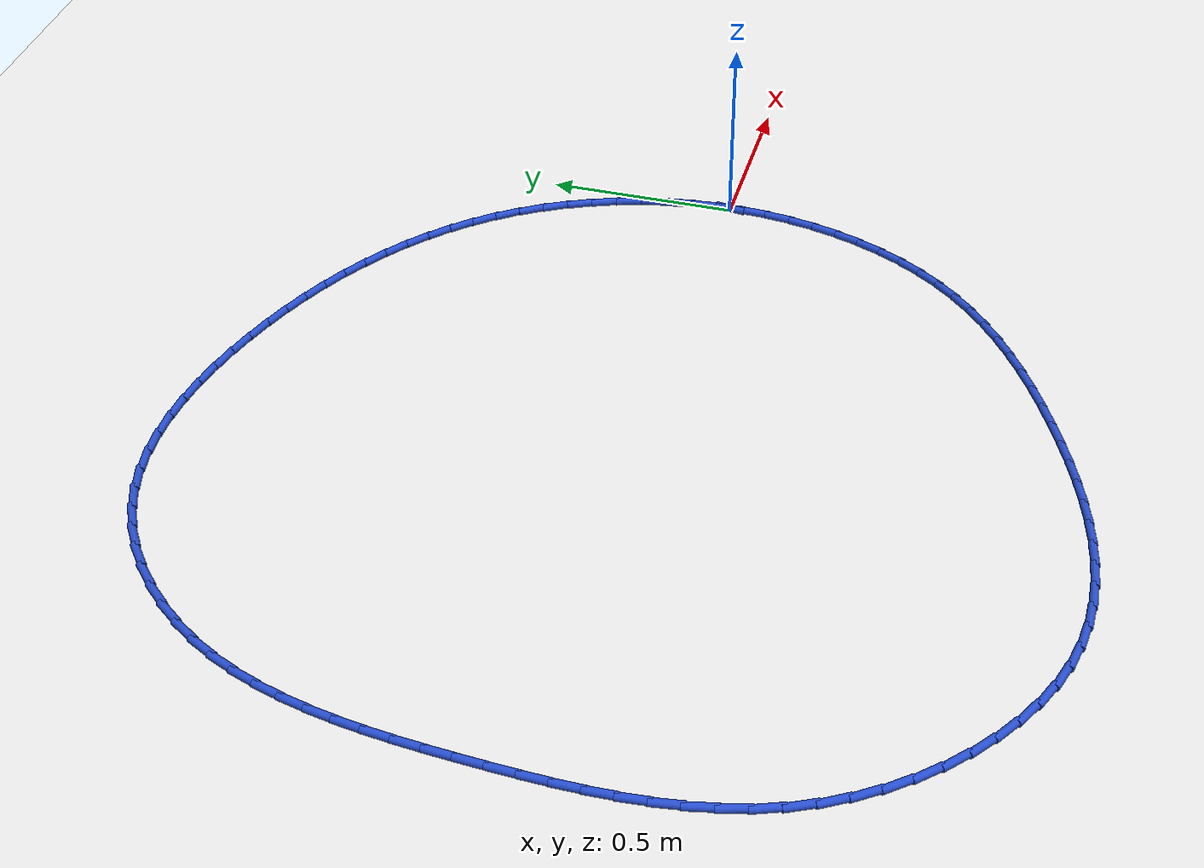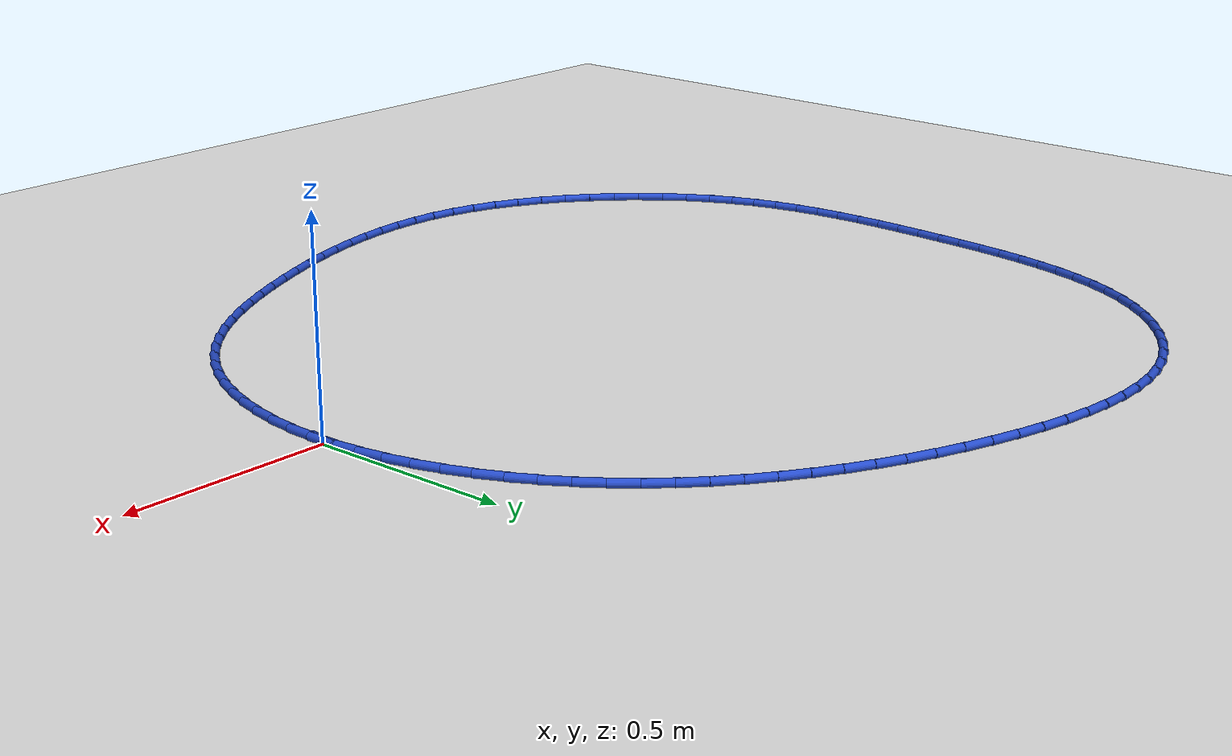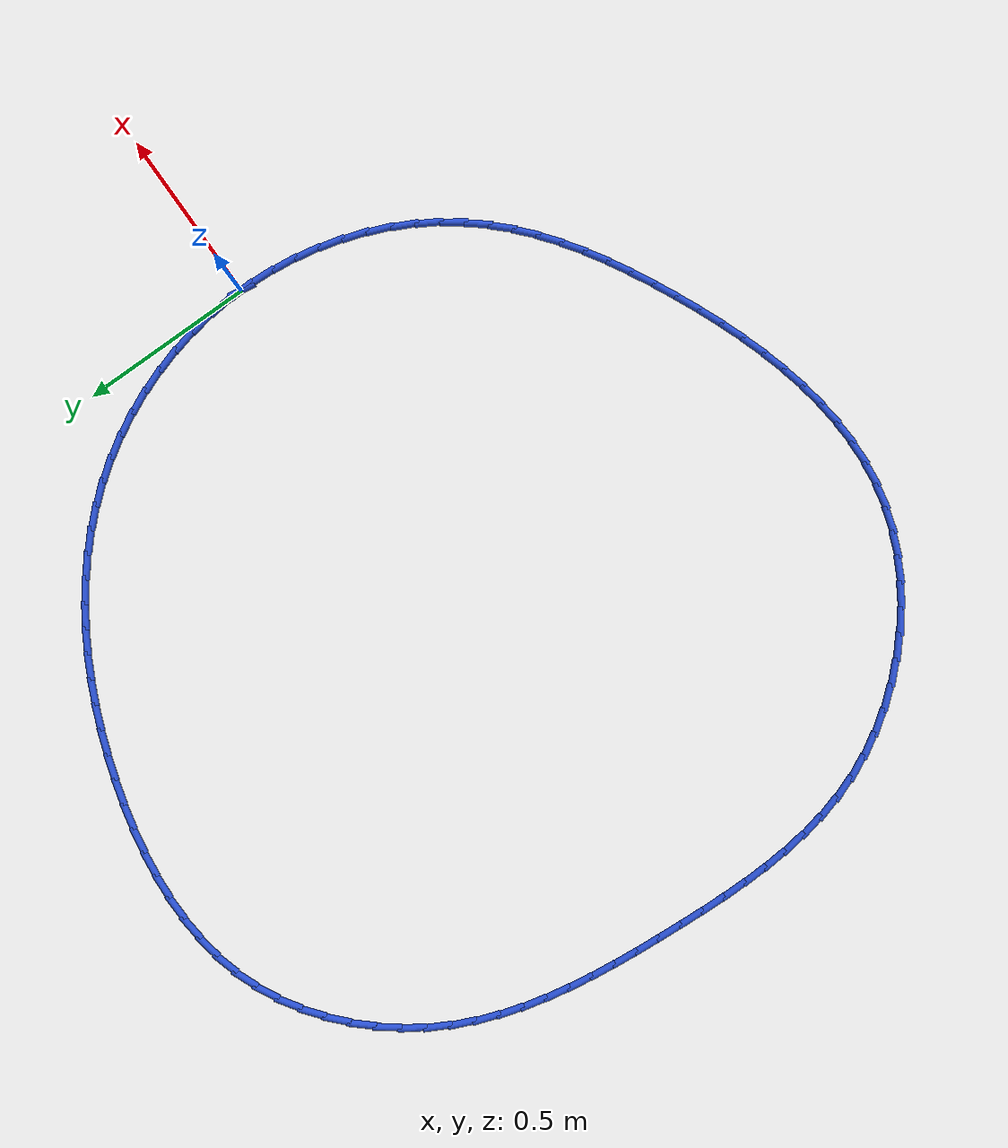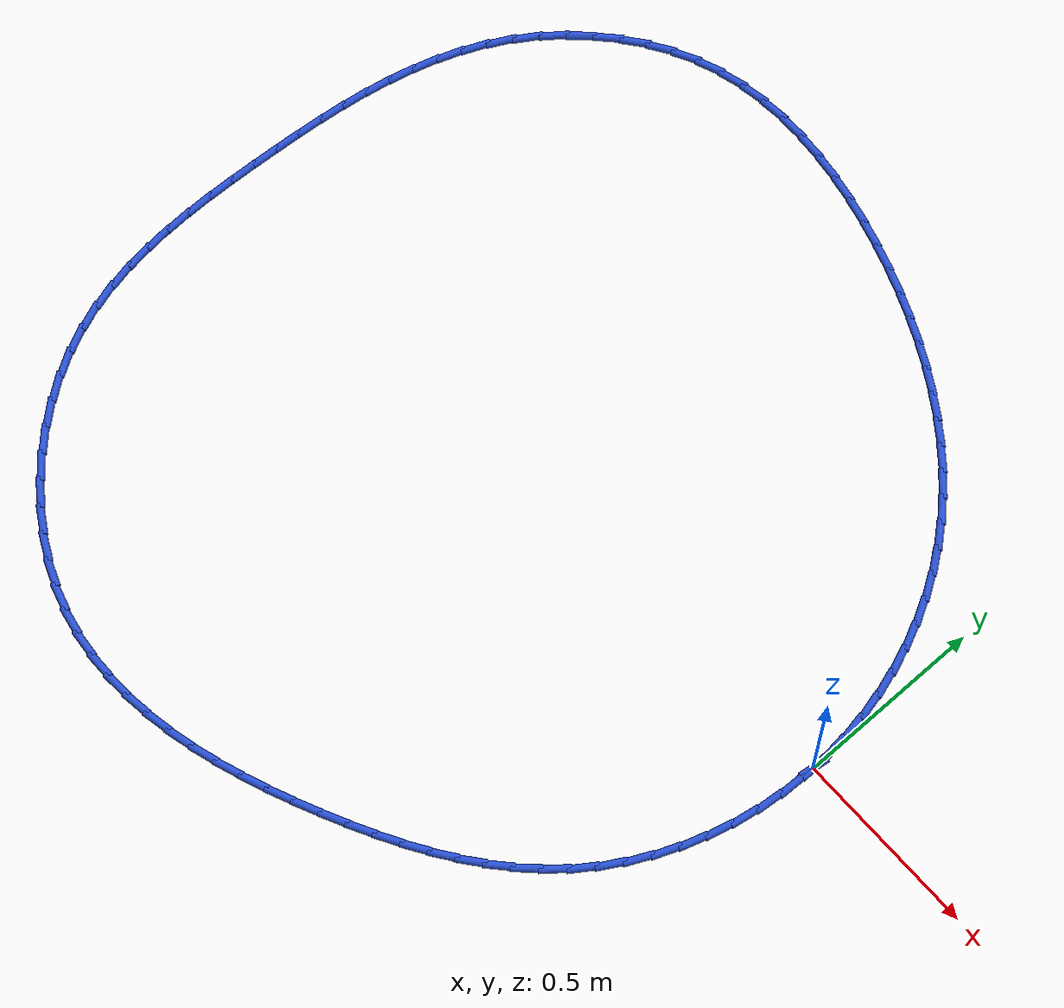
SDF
<sdf version="1.6">
 <world name="default">
  <light name="sun" type="directional">
   <pose>0 0 10 0 -0 0</pose>
   <diffuse>0.8 0.8 0.8 1</diffuse>
   <specular>0.2 0.2 0.2 1</specular>
   <attenuation>
    <range>1000</range>
    <constant>0.9</constant>
    <linear>0.01</linear>
    <quadratic>0.001</quadratic>
   </attenuation>
   <direction>-0.5 0.1 -0.9</direction>
  </light>
  <model name="ground_plane">
   <static>1</static>
   <link name="link">
    <collision name="collision">
     <geometry><plane><normal>0 0 1</normal><size>100 100</size></plane></geometry>
     <surface><friction><ode><mu>100</mu><mu2>50</mu2></ode></friction></surface>
    </collision>
    <visual name="visual">
     <cast_shadows>0</cast_shadows>
     <geometry><plane><normal>0 0 1</normal><size>100 100</size></plane></geometry>
     <material>
      <script><uri>file://media/materials/scripts/gazebo.material</uri><name>Gazebo/WhiteGlow</name></script>
     </material>
    </visual>
   </link>
  </model>
  <gravity>0 0 -9.8</gravity>
  <magnetic_field>6e-06 2.3e-05 -4.2e-05</magnetic_field>
  <atmosphere type="adiabatic"/>
  <physics name="default_physics" default="0" type="ode">
   <max_step_size>0.001</max_step_size>
   <real_time_factor>1</real_time_factor>
   <real_time_update_rate>1000</real_time_update_rate>
  </physics>
  <scene><ambient>0.4 0.4 0.4 1</ambient><background>0.7 0.7 0.7 1</background><shadows>1</shadows></scene>
  <spherical_coordinates>
   <surface_model>EARTH_WGS84</surface_model>
   <latitude_deg>0</latitude_deg>
   <longitude_deg>0</longitude_deg>
   <elevation>0</elevation>
   <heading_deg>0</heading_deg>
  </spherical_coordinates>
  <model name="line">
   <link name="link_0">
    <pose>-1.0408340855860843e-17 2.3592239273284576e-16 0.01 0 1.57 -1.5307040209696998</pose>
    <collision name="collision">
     <geometry><cylinder><radius>0.01</radius><length>0.08</length></cylinder></geometry>
    </collision>
    <visual name="visual">
     <material>
      <script><name>Gazebo/Blue</name><uri>file://media/materials/scripts/gazebo.material</uri></script>
     </material>
     <geometry><cylinder><radius>0.01</radius><length>0.08</length></cylinder></geometry>
    </visual>
   </link>
   <link name="link_1">
    <pose>-0.0027819456140379547 0.06935133405527887 0.01 0 1.57 -1.4609649123528083</pose>
    <collision name="collision">
     <geometry><cylinder><radius>0.01</radius><length>0.08</length></cylinder></geometry>
    </collision>
    <visual name="visual">
     <material>
      <script><name>Gazebo/Blue</name><uri>file://media/materials/scripts/gazebo.material</uri></script>
     </material>
     <geometry><cylinder><radius>0.01</radius><length>0.08</length></cylinder></geometry>
    </visual>
   </link>
   <link name="link_2">
    <pose>-0.010374489710949609 0.13820221873579955 0.01 0 1.57 -1.3925970496812146</pose>
    <collision name="collision">
     <geometry><cylinder><radius>0.01</radius><length>0.08</length></cylinder></geometry>
    </collision>
    <visual name="visual">
     <material>
      <script><name>Gazebo/Blue</name><uri>file://media/materials/scripts/gazebo.material</uri></script>
     </material>
     <geometry><cylinder><radius>0.01</radius><length>0.08</length></cylinder></geometry>
    </visual>
   </link>
   <link name="link_3">
    <pose>-0.02263015509328125 0.2062477460207827 0.01 0 1.57 -1.3252905301535358</pose>
    <collision name="collision">
     <geometry><cylinder><radius>0.01</radius><length>0.08</length></cylinder></geometry>
    </collision>
    <visual name="visual">
     <material>
      <script><name>Gazebo/Blue</name><uri>file://media/materials/scripts/gazebo.material</uri></script>
     </material>
     <geometry><cylinder><radius>0.01</radius><length>0.08</length></cylinder></geometry>
    </visual>
   </link>
   <link name="link_4">
    <pose>-0.03940146456357918 0.273183007889449 0.01 0 1.57 -1.2586994083939762</pose>
    <collision name="collision">
     <geometry><cylinder><radius>0.01</radius><length>0.08</length></cylinder></geometry>
    </collision>
    <visual name="visual">
     <material>
      <script><name>Gazebo/Blue</name><uri>file://media/materials/scripts/gazebo.material</uri></script>
     </material>
     <geometry><cylinder><radius>0.01</radius><length>0.08</length></cylinder></geometry>
    </visual>
   </link>
   <link name="link_5">
    <pose>-0.06054094092438968 0.33870309632101914 0.01 0 1.57 -1.192451535856054</pose>
    <collision name="collision">
     <geometry><cylinder><radius>0.01</radius><length>0.08</length></cylinder></geometry>
    </collision>
    <visual name="visual">
     <material>
      <script><name>Gazebo/Blue</name><uri>file://media/materials/scripts/gazebo.material</uri></script>
     </material>
     <geometry><cylinder><radius>0.01</radius><length>0.08</length></cylinder></geometry>
    </visual>
   </link>
   <link name="link_6">
    <pose>-0.08590110697825899 0.40250310329471356 0.01 0 1.57 -1.126156726993267</pose>
    <collision name="collision">
     <geometry><cylinder><radius>0.01</radius><length>0.08</length></cylinder></geometry>
    </collision>
    <visual name="visual">
     <material>
      <script><name>Gazebo/Blue</name><uri>file://media/materials/scripts/gazebo.material</uri></script>
     </material>
     <geometry><cylinder><radius>0.01</radius><length>0.08</length></cylinder></geometry>
    </visual>
   </link>
   <link name="link_7">
    <pose>-0.11533448552773354 0.4642781207897533 0.01 0 1.57 -1.0594139819991788</pose>
    <collision name="collision">
     <geometry><cylinder><radius>0.01</radius><length>0.08</length></cylinder></geometry>
    </collision>
    <visual name="visual">
     <material>
      <script><name>Gazebo/Blue</name><uri>file://media/materials/scripts/gazebo.material</uri></script>
     </material>
     <geometry><cylinder><radius>0.01</radius><length>0.08</length></cylinder></geometry>
    </visual>
   </link>
   <link name="link_8">
    <pose>-0.14869359937535942 0.5237232407853584 0.01 0 1.57 -0.9918186591567</pose>
    <collision name="collision">
     <geometry><cylinder><radius>0.01</radius><length>0.08</length></cylinder></geometry>
    </collision>
    <visual name="visual">
     <material>
      <script><name>Gazebo/Blue</name><uri>file://media/materials/scripts/gazebo.material</uri></script>
     </material>
     <geometry><cylinder><radius>0.01</radius><length>0.08</length></cylinder></geometry>
    </visual>
   </link>
   <link name="link_9">
    <pose>-0.18583097132368306 0.5805335552607498 0.01 0 1.57 -0.9233879226438525</pose>
    <collision name="collision">
     <geometry><cylinder><radius>0.01</radius><length>0.08</length></cylinder></geometry>
    </collision>
    <visual name="visual">
     <material>
      <script><name>Gazebo/Blue</name><uri>file://media/materials/scripts/gazebo.material</uri></script>
     </material>
     <geometry><cylinder><radius>0.01</radius><length>0.08</length></cylinder></geometry>
    </visual>
   </link>
   <link name="link_10">
    <pose>-0.22659192172140563 0.6344413767714046 0.01 0 1.57 -0.8564567520441899</pose>
    <collision name="collision">
     <geometry><cylinder><radius>0.01</radius><length>0.08</length></cylinder></geometry>
    </collision>
    <visual name="visual">
     <material>
      <script><name>Gazebo/Blue</name><uri>file://media/materials/scripts/gazebo.material</uri></script>
     </material>
     <geometry><cylinder><radius>0.01</radius><length>0.08</length></cylinder></geometry>
    </visual>
   </link>
   <link name="link_11">
    <pose>-0.2707788752775323 0.685400692383001 0.01 0 1.57 -0.7921763505054821</pose>
    <collision name="collision">
     <geometry><cylinder><radius>0.01</radius><length>0.08</length></cylinder></geometry>
    </collision>
    <visual name="visual">
     <material>
      <script><name>Gazebo/Blue</name><uri>file://media/materials/scripts/gazebo.material</uri></script>
     </material>
     <geometry><cylinder><radius>0.01</radius><length>0.08</length></cylinder></geometry>
    </visual>
   </link>
   <link name="link_12">
    <pose>-0.31817844123789313 0.7334472197305232 0.01 0 1.57 -0.730736048974039</pose>
    <collision name="collision">
     <geometry><cylinder><radius>0.01</radius><length>0.08</length></cylinder></geometry>
    </collision>
    <visual name="visual">
     <material>
      <script><name>Gazebo/Blue</name><uri>file://media/materials/scripts/gazebo.material</uri></script>
     </material>
     <geometry><cylinder><radius>0.01</radius><length>0.08</length></cylinder></geometry>
    </visual>
   </link>
   <link name="link_13">
    <pose>-0.36857720392801624 0.7786168052311737 0.01 0 1.57 -0.6722234101204656</pose>
    <collision name="collision">
     <geometry><cylinder><radius>0.01</radius><length>0.08</length></cylinder></geometry>
    </collision>
    <visual name="visual">
     <material>
      <script><name>Gazebo/Blue</name><uri>file://media/materials/scripts/gazebo.material</uri></script>
     </material>
     <geometry><cylinder><radius>0.01</radius><length>0.08</length></cylinder></geometry>
    </visual>
   </link>
   <link name="link_14">
    <pose>-0.42176174767342955 0.8209452953021561 0.01 0 1.57 -0.6166403748638067</pose>
    <collision name="collision">
     <geometry><cylinder><radius>0.01</radius><length>0.08</length></cylinder></geometry>
    </collision>
    <visual name="visual">
     <material>
      <script><name>Gazebo/Blue</name><uri>file://media/materials/scripts/gazebo.material</uri></script>
     </material>
     <geometry><cylinder><radius>0.01</radius><length>0.08</length></cylinder></geometry>
    </visual>
   </link>
   <link name="link_15">
    <pose>-0.47751865679966105 0.8604685363606733 0.01 0 1.57 -0.5639198054358887</pose>
    <collision name="collision">
     <geometry><cylinder><radius>0.01</radius><length>0.08</length></cylinder></geometry>
    </collision>
    <visual name="visual">
     <material>
      <script><name>Gazebo/Blue</name><uri>file://media/materials/scripts/gazebo.material</uri></script>
     </material>
     <geometry><cylinder><radius>0.01</radius><length>0.08</length></cylinder></geometry>
    </visual>
   </link>
   <link name="link_16">
    <pose>-0.5356345156322392 0.8972223748239292 0.01 0 1.57 -0.5139417539182124</pose>
    <collision name="collision">
     <geometry><cylinder><radius>0.01</radius><length>0.08</length></cylinder></geometry>
    </collision>
    <visual name="visual">
     <material>
      <script><name>Gazebo/Blue</name><uri>file://media/materials/scripts/gazebo.material</uri></script>
     </material>
     <geometry><cylinder><radius>0.01</radius><length>0.08</length></cylinder></geometry>
    </visual>
   </link>
   <link name="link_17">
    <pose>-0.5958959084966915 0.9312426571091263 0.01 0 1.57 -0.4665480889643049</pose>
    <collision name="collision">
     <geometry><cylinder><radius>0.01</radius><length>0.08</length></cylinder></geometry>
    </collision>
    <visual name="visual">
     <material>
      <script><name>Gazebo/Blue</name><uri>file://media/materials/scripts/gazebo.material</uri></script>
     </material>
     <geometry><cylinder><radius>0.01</radius><length>0.08</length></cylinder></geometry>
    </visual>
   </link>
   <link name="link_18">
    <pose>-0.6580894197185462 0.9625652296334684 0.01 0 1.57 -0.42155477723332824</pose>
    <collision name="collision">
     <geometry><cylinder><radius>0.01</radius><length>0.08</length></cylinder></geometry>
    </collision>
    <visual name="visual">
     <material>
      <script><name>Gazebo/Blue</name><uri>file://media/materials/scripts/gazebo.material</uri></script>
     </material>
     <geometry><cylinder><radius>0.01</radius><length>0.08</length></cylinder></geometry>
    </visual>
   </link>
   <link name="link_19">
    <pose>-0.7220016336233317 0.9912259388141584 0.01 0 1.57 -0.37876161154683496</pose>
    <collision name="collision">
     <geometry><cylinder><radius>0.01</radius><length>0.08</length></cylinder></geometry>
    </collision>
    <visual name="visual">
     <material>
      <script><name>Gazebo/Blue</name><uri>file://media/materials/scripts/gazebo.material</uri></script>
     </material>
     <geometry><cylinder><radius>0.01</radius><length>0.08</length></cylinder></geometry>
    </visual>
   </link>
   <link name="link_20">
    <pose>-0.7874191345365756 1.0172606310684 0.01 0 1.57 -0.3379594948657783</pose>
    <collision name="collision">
     <geometry><cylinder><radius>0.01</radius><length>0.08</length></cylinder></geometry>
    </collision>
    <visual name="visual">
     <material>
      <script><name>Gazebo/Blue</name><uri>file://media/materials/scripts/gazebo.material</uri></script>
     </material>
     <geometry><cylinder><radius>0.01</radius><length>0.08</length></cylinder></geometry>
    </visual>
   </link>
   <link name="link_21">
    <pose>-0.8541285067838063 1.0407051528133964 0.01 0 1.57 -0.29890712199228464</pose>
    <collision name="collision">
     <geometry><cylinder><radius>0.01</radius><length>0.08</length></cylinder></geometry>
    </collision>
    <visual name="visual">
     <material>
      <script><name>Gazebo/Blue</name><uri>file://media/materials/scripts/gazebo.material</uri></script>
     </material>
     <geometry><cylinder><radius>0.01</radius><length>0.08</length></cylinder></geometry>
    </visual>
   </link>
   <link name="link_22">
    <pose>-0.9219159012123008 1.061593106268585 0.01 0 1.57 -0.2592300717475662</pose>
    <collision name="collision">
     <geometry><cylinder><radius>0.01</radius><length>0.08</length></cylinder></geometry>
    </collision>
    <visual name="visual">
     <material>
      <script><name>Gazebo/Blue</name><uri>file://media/materials/scripts/gazebo.material</uri></script>
     </material>
     <geometry><cylinder><radius>0.01</radius><length>0.08</length></cylinder></geometry>
    </visual>
   </link>
   <link name="link_23">
    <pose>-0.9905351442274224 1.0797907439878462 0.01 0 1.57 -0.21489754353390395</pose>
    <collision name="collision">
     <geometry><cylinder><radius>0.01</radius><length>0.08</length></cylinder></geometry>
    </collision>
    <visual name="visual">
     <material>
      <script><name>Gazebo/Blue</name><uri>file://media/materials/scripts/gazebo.material</uri></script>
     </material>
     <geometry><cylinder><radius>0.01</radius><length>0.08</length></cylinder></geometry>
    </visual>
   </link>
   <link name="link_24">
    <pose>-1.0596859447361489 1.0948841421408966 0.01 0 1.57 -0.1649482767872806</pose>
    <collision name="collision">
     <geometry><cylinder><radius>0.01</radius><length>0.08</length></cylinder></geometry>
    </collision>
    <visual name="visual">
     <material>
      <script><name>Gazebo/Blue</name><uri>file://media/materials/scripts/gazebo.material</uri></script>
     </material>
     <geometry><cylinder><radius>0.01</radius><length>0.08</length></cylinder></geometry>
    </visual>
   </link>
   <link name="link_25">
    <pose>-1.1290628533310967 1.1064326713417747 0.01 0 1.57 -0.10870822279515507</pose>
    <collision name="collision">
     <geometry><cylinder><radius>0.01</radius><length>0.08</length></cylinder></geometry>
    </collision>
    <visual name="visual">
     <material>
      <script><name>Gazebo/Blue</name><uri>file://media/materials/scripts/gazebo.material</uri></script>
     </material>
     <geometry><cylinder><radius>0.01</radius><length>0.08</length></cylinder></geometry>
    </visual>
   </link>
   <link name="link_26">
    <pose>-1.198360420604882 1.113995702204519 0.01 0 1.57 -0.04548850541662369</pose>
    <collision name="collision">
     <geometry><cylinder><radius>0.01</radius><length>0.08</length></cylinder></geometry>
    </collision>
    <visual name="visual">
     <material>
      <script><name>Gazebo/Blue</name><uri>file://media/materials/scripts/gazebo.material</uri></script>
     </material>
     <geometry><cylinder><radius>0.01</radius><length>0.08</length></cylinder></geometry>
    </visual>
   </link>
   <link name="link_27">
    <pose>-1.2672731971501208 1.1171326053431683 0.01 0 1.57 0.025350616978253675</pose>
    <collision name="collision">
     <geometry><cylinder><radius>0.01</radius><length>0.08</length></cylinder></geometry>
    </collision>
    <visual name="visual">
     <material>
      <script><name>Gazebo/Blue</name><uri>file://media/materials/scripts/gazebo.material</uri></script>
     </material>
     <geometry><cylinder><radius>0.01</radius><length>0.08</length></cylinder></geometry>
    </visual>
   </link>
   <link name="link_28">
    <pose>-1.33549573355943 1.1154027513717617 0.01 0 1.57 0.10429916756552113</pose>
    <collision name="collision">
     <geometry><cylinder><radius>0.01</radius><length>0.08</length></cylinder></geometry>
    </collision>
    <visual name="visual">
     <material>
      <script><name>Gazebo/Blue</name><uri>file://media/materials/scripts/gazebo.material</uri></script>
     </material>
     <geometry><cylinder><radius>0.01</radius><length>0.08</length></cylinder></geometry>
    </visual>
   </link>
   <link name="link_29">
    <pose>-1.402722580425425 1.1083655109043373 0.01 0 1.57 0.19155641590141817</pose>
    <collision name="collision">
     <geometry><cylinder><radius>0.01</radius><length>0.08</length></cylinder></geometry>
    </collision>
    <visual name="visual">
     <material>
      <script><name>Gazebo/Blue</name><uri>file://media/materials/scripts/gazebo.material</uri></script>
     </material>
     <geometry><cylinder><radius>0.01</radius><length>0.08</length></cylinder></geometry>
    </visual>
   </link>
   <link name="link_30">
    <pose>-1.4686482883407226 1.0955802545549342 0.01 0 1.57 0.2868599361323198</pose>
    <collision name="collision">
     <geometry><cylinder><radius>0.01</radius><length>0.08</length></cylinder></geometry>
    </collision>
    <visual name="visual">
     <material>
      <script><name>Gazebo/Blue</name><uri>file://media/materials/scripts/gazebo.material</uri></script>
     </material>
     <geometry><cylinder><radius>0.01</radius><length>0.08</length></cylinder></geometry>
    </visual>
   </link>
   <link name="link_31">
    <pose>-1.5329674078979392 1.076606352937591 0.01 0 1.57 0.3889359275700347</pose>
    <collision name="collision">
     <geometry><cylinder><radius>0.01</radius><length>0.08</length></cylinder></geometry>
    </collision>
    <visual name="visual">
     <material>
      <script><name>Gazebo/Blue</name><uri>file://media/materials/scripts/gazebo.material</uri></script>
     </material>
     <geometry><cylinder><radius>0.01</radius><length>0.08</length></cylinder></geometry>
    </visual>
   </link>
   <link name="link_32">
    <pose>-1.595370132853777 1.0510329927623951 0.01 0 1.57 0.48972122359692694</pose>
    <collision name="collision">
     <geometry><cylinder><radius>0.01</radius><length>0.08</length></cylinder></geometry>
    </collision>
    <visual name="visual">
     <material>
      <script><name>Gazebo/Blue</name><uri>file://media/materials/scripts/gazebo.material</uri></script>
     </material>
     <geometry><cylinder><radius>0.01</radius><length>0.08</length></cylinder></geometry>
    </visual>
   </link>
   <link name="link_33">
    <pose>-1.655466198446465 1.01899998026304 0.01 0 1.57 0.5837564144733458</pose>
    <collision name="collision">
     <geometry><cylinder><radius>0.01</radius><length>0.08</length></cylinder></geometry>
    </collision>
    <visual name="visual">
     <material>
      <script><name>Gazebo/Blue</name><uri>file://media/materials/scripts/gazebo.material</uri></script>
     </material>
     <geometry><cylinder><radius>0.01</radius><length>0.08</length></cylinder></geometry>
    </visual>
   </link>
   <link name="link_34">
    <pose>-1.7127945287018733 0.9811317196592458 0.01 0 1.57 0.6723114968002055</pose>
    <collision name="collision">
     <geometry><cylinder><radius>0.01</radius><length>0.08</length></cylinder></geometry>
    </collision>
    <visual name="visual">
     <material>
      <script><name>Gazebo/Blue</name><uri>file://media/materials/scripts/gazebo.material</uri></script>
     </material>
     <geometry><cylinder><radius>0.01</radius><length>0.08</length></cylinder></geometry>
    </visual>
   </link>
   <link name="link_35">
    <pose>-1.7668916301437079 0.9380691593964802 0.01 0 1.57 0.7569777799103161</pose>
    <collision name="collision">
     <geometry><cylinder><radius>0.01</radius><length>0.08</length></cylinder></geometry>
    </collision>
    <visual name="visual">
     <material>
      <script><name>Gazebo/Blue</name><uri>file://media/materials/scripts/gazebo.material</uri></script>
     </material>
     <geometry><cylinder><radius>0.01</radius><length>0.08</length></cylinder></geometry>
    </visual>
   </link>
   <link name="link_36">
    <pose>-1.8172940092956709 0.8904532479202089 0.01 0 1.57 0.8393910165302337</pose>
    <collision name="collision">
     <geometry><cylinder><radius>0.01</radius><length>0.08</length></cylinder></geometry>
    </collision>
    <visual name="visual">
     <material>
      <script><name>Gazebo/Blue</name><uri>file://media/materials/scripts/gazebo.material</uri></script>
     </material>
     <geometry><cylinder><radius>0.01</radius><length>0.08</length></cylinder></geometry>
    </visual>
   </link>
   <link name="link_37">
    <pose>-1.8635381726814662 0.8389249336758978 0.01 0 1.57 0.9212193997133169</pose>
    <collision name="collision">
     <geometry><cylinder><radius>0.01</radius><length>0.08</length></cylinder></geometry>
    </collision>
    <visual name="visual">
     <material>
      <script><name>Gazebo/Blue</name><uri>file://media/materials/scripts/gazebo.material</uri></script>
     </material>
     <geometry><cylinder><radius>0.01</radius><length>0.08</length></cylinder></geometry>
    </visual>
   </link>
   <link name="link_38">
    <pose>-1.9051606268247971 0.7841251651090134 0.01 0 1.57 1.0040785055821915</pose>
    <collision name="collision">
     <geometry><cylinder><radius>0.01</radius><length>0.08</length></cylinder></geometry>
    </collision>
    <visual name="visual">
     <material>
      <script><name>Gazebo/Blue</name><uri>file://media/materials/scripts/gazebo.material</uri></script>
     </material>
     <geometry><cylinder><radius>0.01</radius><length>0.08</length></cylinder></geometry>
    </visual>
   </link>
   <link name="link_39">
    <pose>-1.9417098202382304 0.7266892732005037 0.01 0 1.57 1.0857894293062176</pose>
    <collision name="collision">
     <geometry><cylinder><radius>0.01</radius><length>0.08</length></cylinder></geometry>
    </collision>
    <visual name="visual">
     <material>
      <script><name>Gazebo/Blue</name><uri>file://media/materials/scripts/gazebo.material</uri></script>
     </material>
     <geometry><cylinder><radius>0.01</radius><length>0.08</length></cylinder></geometry>
    </visual>
   </link>
   <link name="link_40">
    <pose>-1.9731307479114852 0.6670660550305759 0.01 0 1.57 1.161492417091445</pose>
    <collision name="collision">
     <geometry><cylinder><radius>0.01</radius><length>0.08</length></cylinder></geometry>
    </collision>
    <visual name="visual">
     <material>
      <script><name>Gazebo/Blue</name><uri>file://media/materials/scripts/gazebo.material</uri></script>
     </material>
     <geometry><cylinder><radius>0.01</radius><length>0.08</length></cylinder></geometry>
    </visual>
   </link>
   <link name="link_41">
    <pose>-1.9998474690523331 0.6054789577584389 0.01 0 1.57 1.2299664799706111</pose>
    <collision name="collision">
     <geometry><cylinder><radius>0.01</radius><length>0.08</length></cylinder></geometry>
    </collision>
    <visual name="visual">
     <material>
      <script><name>Gazebo/Blue</name><uri>file://media/materials/scripts/gazebo.material</uri></script>
     </material>
     <geometry><cylinder><radius>0.01</radius><length>0.08</length></cylinder></geometry>
    </visual>
   </link>
   <link name="link_42">
    <pose>-2.0223126735089623 0.5421379608028337 0.01 0 1.57 1.290676203003453</pose>
    <collision name="collision">
     <geometry><cylinder><radius>0.01</radius><length>0.08</length></cylinder></geometry>
    </collision>
    <visual name="visual">
     <material>
      <script><name>Gazebo/Blue</name><uri>file://media/materials/scripts/gazebo.material</uri></script>
     </material>
     <geometry><cylinder><radius>0.01</radius><length>0.08</length></cylinder></geometry>
    </visual>
   </link>
   <link name="link_43">
    <pose>-2.040979051129562 0.4772530435825008 0.01 0 1.57 1.3434388652745621</pose>
    <collision name="collision">
     <geometry><cylinder><radius>0.01</radius><length>0.08</length></cylinder></geometry>
    </collision>
    <visual name="visual">
     <material>
      <script><name>Gazebo/Blue</name><uri>file://media/materials/scripts/gazebo.material</uri></script>
     </material>
     <geometry><cylinder><radius>0.01</radius><length>0.08</length></cylinder></geometry>
    </visual>
   </link>
   <link name="link_44">
    <pose>-2.0562992917623206 0.4110341855161812 0.01 0 1.57 1.3883187148437743</pose>
    <collision name="collision">
     <geometry><cylinder><radius>0.01</radius><length>0.08</length></cylinder></geometry>
    </collision>
    <visual name="visual">
     <material>
      <script><name>Gazebo/Blue</name><uri>file://media/materials/scripts/gazebo.material</uri></script>
     </material>
     <geometry><cylinder><radius>0.01</radius><length>0.08</length></cylinder></geometry>
    </visual>
   </link>
   <link name="link_45">
    <pose>-2.068726085255427 0.3436913660226159 0.01 0 1.57 1.425525961750378</pose>
    <collision name="collision">
     <geometry><cylinder><radius>0.01</radius><length>0.08</length></cylinder></geometry>
    </collision>
    <visual name="visual">
     <material>
      <script><name>Gazebo/Blue</name><uri>file://media/materials/scripts/gazebo.material</uri></script>
     </material>
     <geometry><cylinder><radius>0.01</radius><length>0.08</length></cylinder></geometry>
    </visual>
   </link>
   <link name="link_46">
    <pose>-2.0787121214570696 0.27543456452054577 0.01 0 1.57 1.45533370592377</pose>
    <collision name="collision">
     <geometry><cylinder><radius>0.01</radius><length>0.08</length></cylinder></geometry>
    </collision>
    <visual name="visual">
     <material>
      <script><name>Gazebo/Blue</name><uri>file://media/materials/scripts/gazebo.material</uri></script>
     </material>
     <geometry><cylinder><radius>0.01</radius><length>0.08</length></cylinder></geometry>
    </visual>
   </link>
   <link name="link_47">
    <pose>-2.086710090215437 0.20647376042871174 0.01 0 1.57 1.4780160686238606</pose>
    <collision name="collision">
     <geometry><cylinder><radius>0.01</radius><length>0.08</length></cylinder></geometry>
    </collision>
    <visual name="visual">
     <material>
      <script><name>Gazebo/Blue</name><uri>file://media/materials/scripts/gazebo.material</uri></script>
     </material>
     <geometry><cylinder><radius>0.01</radius><length>0.08</length></cylinder></geometry>
    </visual>
   </link>
   <link name="link_48">
    <pose>-2.0931726813787184 0.137018933165855 0.01 0 1.57 1.4938052725509678</pose>
    <collision name="collision">
     <geometry><cylinder><radius>0.01</radius><length>0.08</length></cylinder></geometry>
    </collision>
    <visual name="visual">
     <material>
      <script><name>Gazebo/Blue</name><uri>file://media/materials/scripts/gazebo.material</uri></script>
     </material>
     <geometry><cylinder><radius>0.01</radius><length>0.08</length></cylinder></geometry>
    </visual>
   </link>
   <link name="link_49">
    <pose>-2.098552584795102 0.06728006215071573 0.01 0 1.57 1.5040317162548658</pose>
    <collision name="collision">
     <geometry><cylinder><radius>0.01</radius><length>0.08</length></cylinder></geometry>
    </collision>
    <visual name="visual">
     <material>
      <script><name>Gazebo/Blue</name><uri>file://media/materials/scripts/gazebo.material</uri></script>
     </material>
     <geometry><cylinder><radius>0.01</radius><length>0.08</length></cylinder></geometry>
    </visual>
   </link>
   <link name="link_50">
    <pose>-2.103220818809356 -0.0025368015465678483 0.01 0 1.57 1.5178355470558231</pose>
    <collision name="collision">
     <geometry><cylinder><radius>0.01</radius><length>0.08</length></cylinder></geometry>
    </collision>
    <visual name="visual">
     <material>
      <script><name>Gazebo/Blue</name><uri>file://media/materials/scripts/gazebo.material</uri></script>
     </material>
     <geometry><cylinder><radius>0.01</radius><length>0.08</length></cylinder></geometry>
    </visual>
   </link>
   <link name="link_51">
    <pose>-2.1069166576340326 -0.07225599335635532 0.01 0 1.57 1.5395918248478113</pose>
    <collision name="collision">
     <geometry><cylinder><radius>0.01</radius><length>0.08</length></cylinder></geometry>
    </collision>
    <visual name="visual">
     <material>
      <script><name>Gazebo/Blue</name><uri>file://media/materials/scripts/gazebo.material</uri></script>
     </material>
     <geometry><cylinder><radius>0.01</radius><length>0.08</length></cylinder></geometry>
    </visual>
   </link>
   <link name="link_52">
    <pose>-2.1090848268319977 -0.141716016316165 0.01 0 1.57 1.569585813224382</pose>
    <collision name="collision">
     <geometry><cylinder><radius>0.01</radius><length>0.08</length></cylinder></geometry>
    </collision>
    <visual name="visual">
     <material>
      <script><name>Gazebo/Blue</name><uri>file://media/materials/scripts/gazebo.material</uri></script>
     </material>
     <geometry><cylinder><radius>0.01</radius><length>0.08</length></cylinder></geometry>
    </visual>
   </link>
   <link name="link_53">
    <pose>-2.109168400047728 -0.21075545291976416 0.01 0 1.57 -1.5334481593246245</pose>
    <collision name="collision">
     <geometry><cylinder><radius>0.01</radius><length>0.08</length></cylinder></geometry>
    </collision>
    <visual name="visual">
     <material>
      <script><name>Gazebo/Blue</name><uri>file://media/materials/scripts/gazebo.material</uri></script>
     </material>
     <geometry><cylinder><radius>0.01</radius><length>0.08</length></cylinder></geometry>
    </visual>
   </link>
   <link name="link_54">
    <pose>-2.1066104509257015 -0.2792128856609199 0.01 0 1.57 -1.4859897884243036</pose>
    <collision name="collision">
     <geometry><cylinder><radius>0.01</radius><length>0.08</length></cylinder></geometry>
    </collision>
    <visual name="visual">
     <material>
      <script><name>Gazebo/Blue</name><uri>file://media/materials/scripts/gazebo.material</uri></script>
     </material>
     <geometry><cylinder><radius>0.01</radius><length>0.08</length></cylinder></geometry>
    </visual>
   </link>
   <link name="link_55">
    <pose>-2.1008540531103943 -0.34692689703339946 0.01 0 1.57 -1.4293744898065903</pose>
    <collision name="collision">
     <geometry><cylinder><radius>0.01</radius><length>0.08</length></cylinder></geometry>
    </collision>
    <visual name="visual">
     <material>
      <script><name>Gazebo/Blue</name><uri>file://media/materials/scripts/gazebo.material</uri></script>
     </material>
     <geometry><cylinder><radius>0.01</radius><length>0.08</length></cylinder></geometry>
    </visual>
   </link>
   <link name="link_56">
    <pose>-2.0913422802462835 -0.41373606953096986 0.01 0 1.57 -1.3635410161369388</pose>
    <collision name="collision">
     <geometry><cylinder><radius>0.01</radius><length>0.08</length></cylinder></geometry>
    </collision>
    <visual name="visual">
     <material>
      <script><name>Gazebo/Blue</name><uri>file://media/materials/scripts/gazebo.material</uri></script>
     </material>
     <geometry><cylinder><radius>0.01</radius><length>0.08</length></cylinder></geometry>
    </visual>
   </link>
   <link name="link_57">
    <pose>-2.077518205977847 -0.47947898564739855 0.01 0 1.57 -1.2887693747967721</pose>
    <collision name="collision">
     <geometry><cylinder><radius>0.01</radius><length>0.08</length></cylinder></geometry>
    </collision>
    <visual name="visual">
     <material>
      <script><name>Gazebo/Blue</name><uri>file://media/materials/scripts/gazebo.material</uri></script>
     </material>
     <geometry><cylinder><radius>0.01</radius><length>0.08</length></cylinder></geometry>
    </visual>
   </link>
   <link name="link_58">
    <pose>-2.0588249039495627 -0.5439942278764518 0.01 0 1.57 -1.2058300351803464</pose>
    <collision name="collision">
     <geometry><cylinder><radius>0.01</radius><length>0.08</length></cylinder></geometry>
    </collision>
    <visual name="visual">
     <material>
      <script><name>Gazebo/Blue</name><uri>file://media/materials/scripts/gazebo.material</uri></script>
     </material>
     <geometry><cylinder><radius>0.01</radius><length>0.08</length></cylinder></geometry>
    </visual>
   </link>
   <link name="link_59">
    <pose>-2.0347054478059063 -0.6071203787118983 0.01 0 1.57 -1.1174718911258033</pose>
    <collision name="collision">
     <geometry><cylinder><radius>0.01</radius><length>0.08</length></cylinder></geometry>
    </collision>
    <visual name="visual">
     <material>
      <script><name>Gazebo/Blue</name><uri>file://media/materials/scripts/gazebo.material</uri></script>
     </material>
     <geometry><cylinder><radius>0.01</radius><length>0.08</length></cylinder></geometry>
    </visual>
   </link>
   <link name="link_60">
    <pose>-2.004727321772045 -0.6686566556029429 0.01 0 1.57 -1.0319528572783314</pose>
    <collision name="collision">
     <geometry><cylinder><radius>0.01</radius><length>0.08</length></cylinder></geometry>
    </collision>
    <visual name="visual">
     <material>
      <script><name>Gazebo/Blue</name><uri>file://media/materials/scripts/gazebo.material</uri></script>
     </material>
     <geometry><cylinder><radius>0.01</radius><length>0.08</length></cylinder></geometry>
    </visual>
   </link>
   <link name="link_61">
    <pose>-1.969136176099274 -0.7281876958908108 0.01 0 1.57 -0.9506934805059679</pose>
    <collision name="collision">
     <geometry><cylinder><radius>0.01</radius><length>0.08</length></cylinder></geometry>
    </collision>
    <visual name="visual">
     <material>
      <script><name>Gazebo/Blue</name><uri>file://media/materials/scripts/gazebo.material</uri></script>
     </material>
     <geometry><cylinder><radius>0.01</radius><length>0.08</length></cylinder></geometry>
    </visual>
   </link>
   <link name="link_62">
    <pose>-1.9284076028151647 -0.7852253804982654 0.01 0 1.57 -0.8723203051047793</pose>
    <collision name="collision">
     <geometry><cylinder><radius>0.01</radius><length>0.08</length></cylinder></geometry>
    </collision>
    <visual name="visual">
     <material>
      <script><name>Gazebo/Blue</name><uri>file://media/materials/scripts/gazebo.material</uri></script>
     </material>
     <geometry><cylinder><radius>0.01</radius><length>0.08</length></cylinder></geometry>
    </visual>
   </link>
   <link name="link_63">
    <pose>-1.8830173795630163 -0.8392815316169613 0.01 0 1.57 -0.7954848687285586</pose>
    <collision name="collision">
     <geometry><cylinder><radius>0.01</radius><length>0.08</length></cylinder></geometry>
    </collision>
    <visual name="visual">
     <material>
      <script><name>Gazebo/Blue</name><uri>file://media/materials/scripts/gazebo.material</uri></script>
     </material>
     <geometry><cylinder><radius>0.01</radius><length>0.08</length></cylinder></geometry>
    </visual>
   </link>
   <link name="link_64">
    <pose>-1.8334412839861265 -0.8898679714385531 0.01 0 1.57 -0.7188633120630858</pose>
    <collision name="collision">
     <geometry><cylinder><radius>0.01</radius><length>0.08</length></cylinder></geometry>
    </collision>
    <visual name="visual">
     <material>
      <script><name>Gazebo/Blue</name><uri>file://media/materials/scripts/gazebo.material</uri></script>
     </material>
     <geometry><cylinder><radius>0.01</radius><length>0.08</length></cylinder></geometry>
    </visual>
   </link>
   <link name="link_65">
    <pose>-1.7801550937277952 -0.9364965221546957 0.01 0 1.57 -0.641142868248374</pose>
    <collision name="collision">
     <geometry><cylinder><radius>0.01</radius><length>0.08</length></cylinder></geometry>
    </collision>
    <visual name="visual">
     <material>
      <script><name>Gazebo/Blue</name><uri>file://media/materials/scripts/gazebo.material</uri></script>
     </material>
     <geometry><cylinder><radius>0.01</radius><length>0.08</length></cylinder></geometry>
    </visual>
   </link>
   <link name="link_66">
    <pose>-1.7236345864313207 -0.9786790059570434 0.01 0 1.57 -0.561007702574184</pose>
    <collision name="collision">
     <geometry><cylinder><radius>0.01</radius><length>0.08</length></cylinder></geometry>
    </collision>
    <visual name="visual">
     <material>
      <script><name>Gazebo/Blue</name><uri>file://media/materials/scripts/gazebo.material</uri></script>
     </material>
     <geometry><cylinder><radius>0.01</radius><length>0.08</length></cylinder></geometry>
    </visual>
   </link>
   <link name="link_67">
    <pose>-1.6643555397400023 -1.0159272450372507 0.01 0 1.57 -0.4771339310156454</pose>
    <collision name="collision">
     <geometry><cylinder><radius>0.01</radius><length>0.08</length></cylinder></geometry>
    </collision>
    <visual name="visual">
     <material>
      <script><name>Gazebo/Blue</name><uri>file://media/materials/scripts/gazebo.material</uri></script>
     </material>
     <geometry><cylinder><radius>0.01</radius><length>0.08</length></cylinder></geometry>
    </visual>
   </link>
   <link name="link_68">
    <pose>-1.6027937312971383 -1.047753061586973 0.01 0 1.57 -0.3882054196956032</pose>
    <collision name="collision">
     <geometry><cylinder><radius>0.01</radius><length>0.08</length></cylinder></geometry>
    </collision>
    <visual name="visual">
     <material>
      <script><name>Gazebo/Blue</name><uri>file://media/materials/scripts/gazebo.material</uri></script>
     </material>
     <geometry><cylinder><radius>0.01</radius><length>0.08</length></cylinder></geometry>
    </visual>
   </link>
   <link name="link_69">
    <pose>-1.539424938746028 -1.073668277797864 0.01 0 1.57 -0.2930321688538328</pose>
    <collision name="collision">
     <geometry><cylinder><radius>0.01</radius><length>0.08</length></cylinder></geometry>
    </collision>
    <visual name="visual">
     <material>
      <script><name>Gazebo/Blue</name><uri>file://media/materials/scripts/gazebo.material</uri></script>
     </material>
     <geometry><cylinder><radius>0.01</radius><length>0.08</length></cylinder></geometry>
    </visual>
   </link>
   <link name="link_70">
    <pose>-1.4747232711658247 -1.0931899336880082 0.01 0 1.57 -0.19522215519793584</pose>
    <collision name="collision">
     <geometry><cylinder><radius>0.01</radius><length>0.08</length></cylinder></geometry>
    </collision>
    <visual name="visual">
     <material>
      <script><name>Gazebo/Blue</name><uri>file://media/materials/scripts/gazebo.material</uri></script>
     </material>
     <geometry><cylinder><radius>0.01</radius><length>0.08</length></cylinder></geometry>
    </visual>
   </link>
   <link name="link_71">
    <pose>-1.4090540007101637 -1.1061754171056097 0.01 0 1.57 -0.10273728312387038</pose>
    <collision name="collision">
     <geometry><cylinder><radius>0.01</radius><length>0.08</length></cylinder></geometry>
    </collision>
    <visual name="visual">
     <material>
      <script><name>Gazebo/Blue</name><uri>file://media/materials/scripts/gazebo.material</uri></script>
     </material>
     <geometry><cylinder><radius>0.01</radius><length>0.08</length></cylinder></geometry>
    </visual>
   </link>
   <link name="link_72">
    <pose>-1.3426084856565046 -1.113025968181562 0.01 0 1.57 -0.01738335822605652</pose>
    <collision name="collision">
     <geometry><cylinder><radius>0.01</radius><length>0.08</length></cylinder></geometry>
    </collision>
    <visual name="visual">
     <material>
      <script><name>Gazebo/Blue</name><uri>file://media/materials/scripts/gazebo.material</uri></script>
     </material>
     <geometry><cylinder><radius>0.01</radius><length>0.08</length></cylinder></geometry>
    </visual>
   </link>
   <link name="link_73">
    <pose>-1.2755624971810424 -1.114191570026849 0.01 0 1.57 0.06024009304380691</pose>
    <collision name="collision">
     <geometry><cylinder><radius>0.01</radius><length>0.08</length></cylinder></geometry>
    </collision>
    <visual name="visual">
     <material>
      <script><name>Gazebo/Blue</name><uri>file://media/materials/scripts/gazebo.material</uri></script>
     </material>
     <geometry><cylinder><radius>0.01</radius><length>0.08</length></cylinder></geometry>
    </visual>
   </link>
   <link name="link_74">
    <pose>-1.208091806459973 -1.1101222057524576 0.01 0 1.57 0.13001256662188204</pose>
    <collision name="collision">
     <geometry><cylinder><radius>0.01</radius><length>0.08</length></cylinder></geometry>
    </collision>
    <visual name="visual">
     <material>
      <script><name>Gazebo/Blue</name><uri>file://media/materials/scripts/gazebo.material</uri></script>
     </material>
     <geometry><cylinder><radius>0.01</radius><length>0.08</length></cylinder></geometry>
    </visual>
   </link>
   <link name="link_75">
    <pose>-1.1403721846694905 -1.1012678584693711 0.01 0 1.57 0.19215344199157863</pose>
    <collision name="collision">
     <geometry><cylinder><radius>0.01</radius><length>0.08</length></cylinder></geometry>
    </collision>
    <visual name="visual">
     <material>
      <script><name>Gazebo/Blue</name><uri>file://media/materials/scripts/gazebo.material</uri></script>
     </material>
     <geometry><cylinder><radius>0.01</radius><length>0.08</length></cylinder></geometry>
    </visual>
   </link>
   <link name="link_76">
    <pose>-1.0725794029857894 -1.0880785112885756 0.01 0 1.57 0.24708849852603107</pose>
    <collision name="collision">
     <geometry><cylinder><radius>0.01</radius><length>0.08</length></cylinder></geometry>
    </collision>
    <visual name="visual">
     <material>
      <script><name>Gazebo/Blue</name><uri>file://media/materials/scripts/gazebo.material</uri></script>
     </material>
     <geometry><cylinder><radius>0.01</radius><length>0.08</length></cylinder></geometry>
    </visual>
   </link>
   <link name="link_77">
    <pose>-1.0048892325850647 -1.0710041473210552 0.01 0 1.57 0.29534262807002165</pose>
    <collision name="collision">
     <geometry><cylinder><radius>0.01</radius><length>0.08</length></cylinder></geometry>
    </collision>
    <visual name="visual">
     <material>
      <script><name>Gazebo/Blue</name><uri>file://media/materials/scripts/gazebo.material</uri></script>
     </material>
     <geometry><cylinder><radius>0.01</radius><length>0.08</length></cylinder></geometry>
    </visual>
   </link>
   <link name="link_78">
    <pose>-0.9374774446435112 -1.0504947496777954 0.01 0 1.57 0.3374632690223444</pose>
    <collision name="collision">
     <geometry><cylinder><radius>0.01</radius><length>0.08</length></cylinder></geometry>
    </collision>
    <visual name="visual">
     <material>
      <script><name>Gazebo/Blue</name><uri>file://media/materials/scripts/gazebo.material</uri></script>
     </material>
     <geometry><cylinder><radius>0.01</radius><length>0.08</length></cylinder></geometry>
    </visual>
   </link>
   <link name="link_79">
    <pose>-0.8705198103373233 -1.027000301469781 0.01 0 1.57 0.3739704876281476</pose>
    <collision name="collision">
     <geometry><cylinder><radius>0.01</radius><length>0.08</length></cylinder></geometry>
    </collision>
    <visual name="visual">
     <material>
      <script><name>Gazebo/Blue</name><uri>file://media/materials/scripts/gazebo.material</uri></script>
     </material>
     <geometry><cylinder><radius>0.01</radius><length>0.08</length></cylinder></geometry>
    </visual>
   </link>
   <link name="link_80">
    <pose>-0.8041921008426963 -1.000970785807997 0.01 0 1.57 0.4053267041712112</pose>
    <collision name="collision">
     <geometry><cylinder><radius>0.01</radius><length>0.08</length></cylinder></geometry>
    </collision>
    <visual name="visual">
     <material>
      <script><name>Gazebo/Blue</name><uri>file://media/materials/scripts/gazebo.material</uri></script>
     </material>
     <geometry><cylinder><radius>0.01</radius><length>0.08</length></cylinder></geometry>
    </visual>
   </link>
   <link name="link_81">
    <pose>-0.7386700873358246 -0.9728561858034285 0.01 0 1.57 0.43194955046244243</pose>
    <collision name="collision">
     <geometry><cylinder><radius>0.01</radius><length>0.08</length></cylinder></geometry>
    </collision>
    <visual name="visual">
     <material>
      <script><name>Gazebo/Blue</name><uri>file://media/materials/scripts/gazebo.material</uri></script>
     </material>
     <geometry><cylinder><radius>0.01</radius><length>0.08</length></cylinder></geometry>
    </visual>
   </link>
   <link name="link_82">
    <pose>-0.674129979936721 -0.9431043100070432 0.01 0 1.57 0.45739463508403705</pose>
    <collision name="collision">
     <geometry><cylinder><radius>0.01</radius><length>0.08</length></cylinder></geometry>
    </collision>
    <visual name="visual">
     <material>
      <script><name>Gazebo/Blue</name><uri>file://media/materials/scripts/gazebo.material</uri></script>
     </material>
     <geometry><cylinder><radius>0.01</radius><length>0.08</length></cylinder></geometry>
    </visual>
   </link>
   <link name="link_83">
    <pose>-0.6107949534249145 -0.9119303005857968 0.01 0 1.57 0.48803332923859716</pose>
    <collision name="collision">
     <geometry><cylinder><radius>0.01</radius><length>0.08</length></cylinder></geometry>
    </collision>
    <visual name="visual">
     <material>
      <script><name>Gazebo/Blue</name><uri>file://media/materials/scripts/gazebo.material</uri></script>
     </material>
     <geometry><cylinder><radius>0.01</radius><length>0.08</length></cylinder></geometry>
    </visual>
   </link>
   <link name="link_84">
    <pose>-0.5489762623369182 -0.8791129461000853 0.01 0 1.57 0.5248440740192388</pose>
    <collision name="collision">
     <geometry><cylinder><radius>0.01</radius><length>0.08</length></cylinder></geometry>
    </collision>
    <visual name="visual">
     <material>
      <script><name>Gazebo/Blue</name><uri>file://media/materials/scripts/gazebo.material</uri></script>
     </material>
     <geometry><cylinder><radius>0.01</radius><length>0.08</length></cylinder></geometry>
    </visual>
   </link>
   <link name="link_85">
    <pose>-0.48899485710354035 -0.8443830009354688 0.01 0 1.57 0.5681462117757281</pose>
    <collision name="collision">
     <geometry><cylinder><radius>0.01</radius><length>0.08</length></cylinder></geometry>
    </collision>
    <visual name="visual">
     <material>
      <script><name>Gazebo/Blue</name><uri>file://media/materials/scripts/gazebo.material</uri></script>
     </material>
     <geometry><cylinder><radius>0.01</radius><length>0.08</length></cylinder></geometry>
    </visual>
   </link>
   <link name="link_86">
    <pose>-0.4311716881555919 -0.8074712194775094 0.01 0 1.57 0.6182299358706561</pose>
    <collision name="collision">
     <geometry><cylinder><radius>0.01</radius><length>0.08</length></cylinder></geometry>
    </collision>
    <visual name="visual">
     <material>
      <script><name>Gazebo/Blue</name><uri>file://media/materials/scripts/gazebo.material</uri></script>
     </material>
     <geometry><cylinder><radius>0.01</radius><length>0.08</length></cylinder></geometry>
    </visual>
   </link>
   <link name="link_87">
    <pose>-0.3758277059238834 -0.7681083561117685 0.01 0 1.57 0.6752990514130424</pose>
    <collision name="collision">
     <geometry><cylinder><radius>0.01</radius><length>0.08</length></cylinder></geometry>
    </collision>
    <visual name="visual">
     <material>
      <script><name>Gazebo/Blue</name><uri>file://media/materials/scripts/gazebo.material</uri></script>
     </material>
     <geometry><cylinder><radius>0.01</radius><length>0.08</length></cylinder></geometry>
    </visual>
   </link>
   <link name="link_88">
    <pose>-0.32328386083922483 -0.726025165223807 0.01 0 1.57 0.7393967804865355</pose>
    <collision name="collision">
     <geometry><cylinder><radius>0.01</radius><length>0.08</length></cylinder></geometry>
    </collision>
    <visual name="visual">
     <material>
      <script><name>Gazebo/Blue</name><uri>file://media/materials/scripts/gazebo.material</uri></script>
     </material>
     <geometry><cylinder><radius>0.01</radius><length>0.08</length></cylinder></geometry>
    </visual>
   </link>
   <link name="link_89">
    <pose>-0.2738611033324264 -0.6809524011991868 0.01 0 1.57 0.8103193721883055</pose>
    <collision name="collision">
     <geometry><cylinder><radius>0.01</radius><length>0.08</length></cylinder></geometry>
    </collision>
    <visual name="visual">
     <material>
      <script><name>Gazebo/Blue</name><uri>file://media/materials/scripts/gazebo.material</uri></script>
     </material>
     <geometry><cylinder><radius>0.01</radius><length>0.08</length></cylinder></geometry>
    </visual>
   </link>
   <link name="link_90">
    <pose>-0.22788038383429832 -0.6326208184234688 0.01 0 1.57 0.8875272931237589</pose>
    <collision name="collision">
     <geometry><cylinder><radius>0.01</radius><length>0.08</length></cylinder></geometry>
    </collision>
    <visual name="visual">
     <material>
      <script><name>Gazebo/Blue</name><uri>file://media/materials/scripts/gazebo.material</uri></script>
     </material>
     <geometry><cylinder><radius>0.01</radius><length>0.08</length></cylinder></geometry>
    </visual>
   </link>
   <link name="link_91">
    <pose>-0.18566256940225923 -0.5807614368324071 0.01 0 1.57 0.9680293195112037</pose>
    <collision name="collision">
     <geometry><cylinder><radius>0.01</radius><length>0.08</length></cylinder></geometry>
    </collision>
    <visual name="visual">
     <material>
      <script><name>Gazebo/Blue</name><uri>file://media/materials/scripts/gazebo.material</uri></script>
     </material>
     <geometry><cylinder><radius>0.01</radius><length>0.08</length></cylinder></geometry>
    </visual>
   </link>
   <link name="link_92">
    <pose>-0.14747561486126573 -0.52527380559155 0.01 0 1.57 1.0458330078831446</pose>
    <collision name="collision">
     <geometry><cylinder><radius>0.01</radius><length>0.08</length></cylinder></geometry>
    </collision>
    <visual name="visual">
     <material>
      <script><name>Gazebo/Blue</name><uri>file://media/materials/scripts/gazebo.material</uri></script>
     </material>
     <geometry><cylinder><radius>0.01</radius><length>0.08</length></cylinder></geometry>
    </visual>
   </link>
   <link name="link_93">
    <pose>-0.11344396333294852 -0.4665145688651453 0.01 0 1.57 1.1205193857094096</pose>
    <collision name="collision">
     <geometry><cylinder><radius>0.01</radius><length>0.08</length></cylinder></geometry>
    </collision>
    <visual name="visual">
     <material>
      <script><name>Gazebo/Blue</name><uri>file://media/materials/scripts/gazebo.material</uri></script>
     </material>
     <geometry><cylinder><radius>0.01</radius><length>0.08</length></cylinder></geometry>
    </visual>
   </link>
   <link name="link_94">
    <pose>-0.0836679614007639 -0.40491712000813335 0.01 0 1.57 1.1927289450094758</pose>
    <collision name="collision">
     <geometry><cylinder><radius>0.01</radius><length>0.08</length></cylinder></geometry>
    </collision>
    <visual name="visual">
     <material>
      <script><name>Gazebo/Blue</name><uri>file://media/materials/scripts/gazebo.material</uri></script>
     </material>
     <geometry><cylinder><radius>0.01</radius><length>0.08</length></cylinder></geometry>
    </visual>
   </link>
   <link name="link_95">
    <pose>-0.05824795564816833 -0.3409148523754551 0.01 0 1.57 1.2631285278264401</pose>
    <collision name="collision">
     <geometry><cylinder><radius>0.01</radius><length>0.08</length></cylinder></geometry>
    </collision>
    <visual name="visual">
     <material>
      <script><name>Gazebo/Blue</name><uri>file://media/materials/scripts/gazebo.material</uri></script>
     </material>
     <geometry><cylinder><radius>0.01</radius><length>0.08</length></cylinder></geometry>
    </visual>
   </link>
   <link name="link_96">
    <pose>-0.037284292658618406 -0.2749411593220522 0.01 0 1.57 1.3323939524184345</pose>
    <collision name="collision">
     <geometry><cylinder><radius>0.01</radius><length>0.08</length></cylinder></geometry>
    </collision>
    <visual name="visual">
     <material>
      <script><name>Gazebo/Blue</name><uri>file://media/materials/scripts/gazebo.material</uri></script>
     </material>
     <geometry><cylinder><radius>0.01</radius><length>0.08</length></cylinder></geometry>
    </visual>
   </link>
   <link name="link_97">
    <pose>-0.020877319015570057 -0.20742943420286392 0.01 0 1.57 1.4012002331802902</pose>
    <collision name="collision">
     <geometry><cylinder><radius>0.01</radius><length>0.08</length></cylinder></geometry>
    </collision>
    <visual name="visual">
     <material>
      <script><name>Gazebo/Blue</name><uri>file://media/materials/scripts/gazebo.material</uri></script>
     </material>
     <geometry><cylinder><radius>0.01</radius><length>0.08</length></cylinder></geometry>
    </visual>
   </link>
   <link name="link_98">
    <pose>-0.009127381302479932 -0.1388130703728318 0.01 0 1.57 1.4702161566399283</pose>
    <collision name="collision">
     <geometry><cylinder><radius>0.01</radius><length>0.08</length></cylinder></geometry>
    </collision>
    <visual name="visual">
     <material>
      <script><name>Gazebo/Blue</name><uri>file://media/materials/scripts/gazebo.material</uri></script>
     </material>
     <geometry><cylinder><radius>0.01</radius><length>0.08</length></cylinder></geometry>
    </visual>
   </link>
   <link name="link_99">
    <pose>-0.002134826102804445 -0.06952546118689681 0.01 0 1.57 1.5401002981217875</pose>
    <collision name="collision">
     <geometry><cylinder><radius>0.01</radius><length>0.08</length></cylinder></geometry>
    </collision>
    <visual name="visual">
     <material>
      <script><name>Gazebo/Blue</name><uri>file://media/materials/scripts/gazebo.material</uri></script>
     </material>
     <geometry><cylinder><radius>0.01</radius><length>0.08</length></cylinder></geometry>
    </visual>
   </link>
   <link name="link_100">
    <pose>6.938893903907228e-18 3.608224830031759e-16 0.01 0 1.57 1.4327903031373772</pose>
    <collision name="collision">
     <geometry><cylinder><radius>0.01</radius><length>0.08</length></cylinder></geometry>
    </collision>
    <visual name="visual">
     <material>
      <script><name>Gazebo/Blue</name><uri>file://media/materials/scripts/gazebo.material</uri></script>
     </material>
     <geometry><cylinder><radius>0.01</radius><length>0.08</length></cylinder></geometry>
    </visual>
   </link>
  </model>
 </world>
</sdf>
